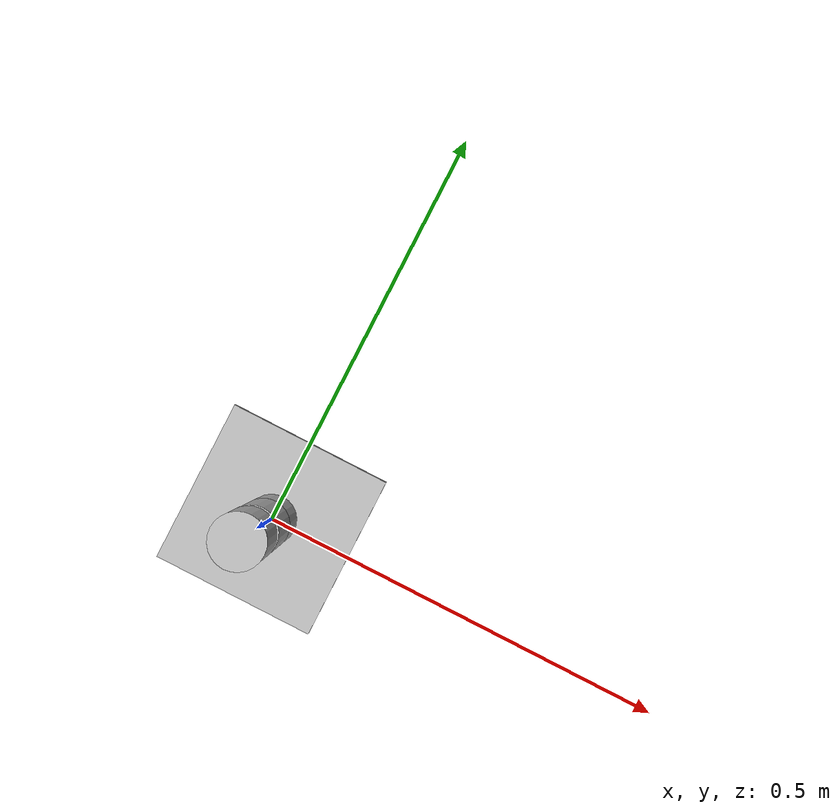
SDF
<?xml version="1.0" ?>
<sdf version="1.6">
  <model name="three_dof_arm">
    <static>false</static>
    <link name="base_link">
      <visual>
        <geometry>
          <box>
            <size>0.2 0.2 0.05</size>
          </box>
        </geometry>
      </visual>
    </link>
    <link name="link1">
      <pose>0 0 0.05 0 0 0</pose>
      <visual>
        <geometry>
          <cylinder>
            <radius>0.03</radius>
            <length>0.5</length>
          </cylinder>
        </geometry>
      </visual>
    </link>
    <joint name="joint1" type="revolute">
      <parent>base_link</parent>
      <child>link1</child>
      <pose>0 0 0.05 0 0 0</pose>
      <axis>
        <xyz>0 0 1</xyz>
        <limit>
          <lower>-3.14</lower>
          <upper>3.14</upper>
        </limit>
      </axis>
    </joint>
    <link name="link2">
      <pose>0 0 0.5 0 0 0</pose>
      <visual>
        <geometry>
          <cylinder>
            <radius>0.03</radius>
            <length>0.4</length>
          </cylinder>
        </geometry>
      </visual>
    </link>
    <joint name="joint2" type="revolute">
      <parent>link1</parent>
      <child>link2</child>
      <pose>0 0 0.5 0 0 0</pose>
      <axis>
        <xyz>0 1 0</xyz>
        <limit>
          <lower>-3.14</lower>
          <upper>3.14</upper>
        </limit>
      </axis>
    </joint>
    <link name="link3">
      <pose>0 0 0.9 0 0 0</pose>
      <visual>
        <geometry>
          <cylinder>
            <radius>0.03</radius>
            <length>0.3</length>
          </cylinder>
        </geometry>
      </visual>
    </link>
    <joint name="joint3" type="revolute">
      <parent>link2</parent>
      <child>link3</child>
      <pose>0 0 0.9 0 0 0</pose>
      <axis>
        <xyz>0 1 0</xyz>
        <limit>
          <lower>-3.14</lower>
          <upper>3.14</upper>
        </limit>
      </axis>
    </joint>
  </model>
</sdf>
